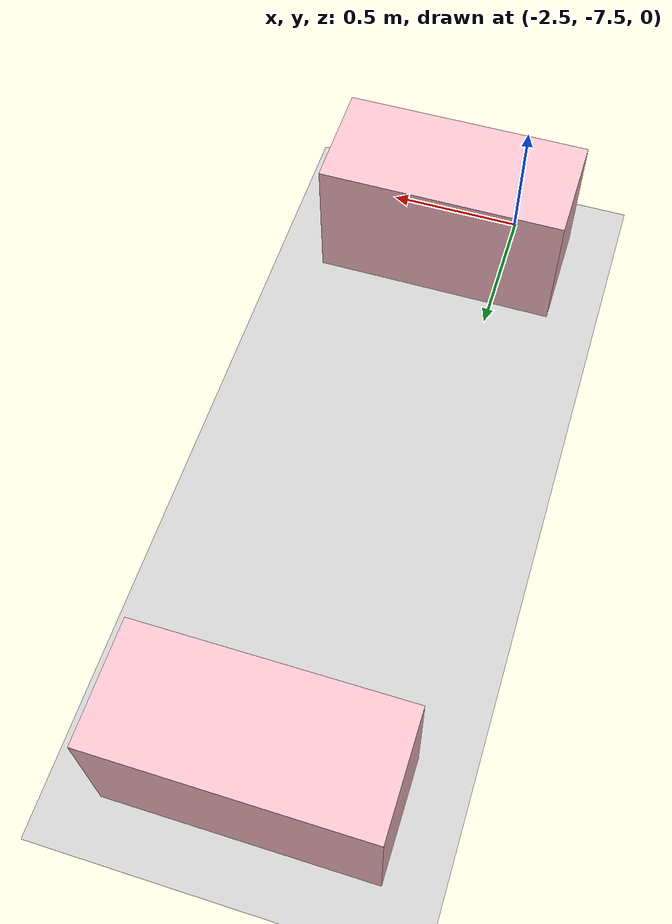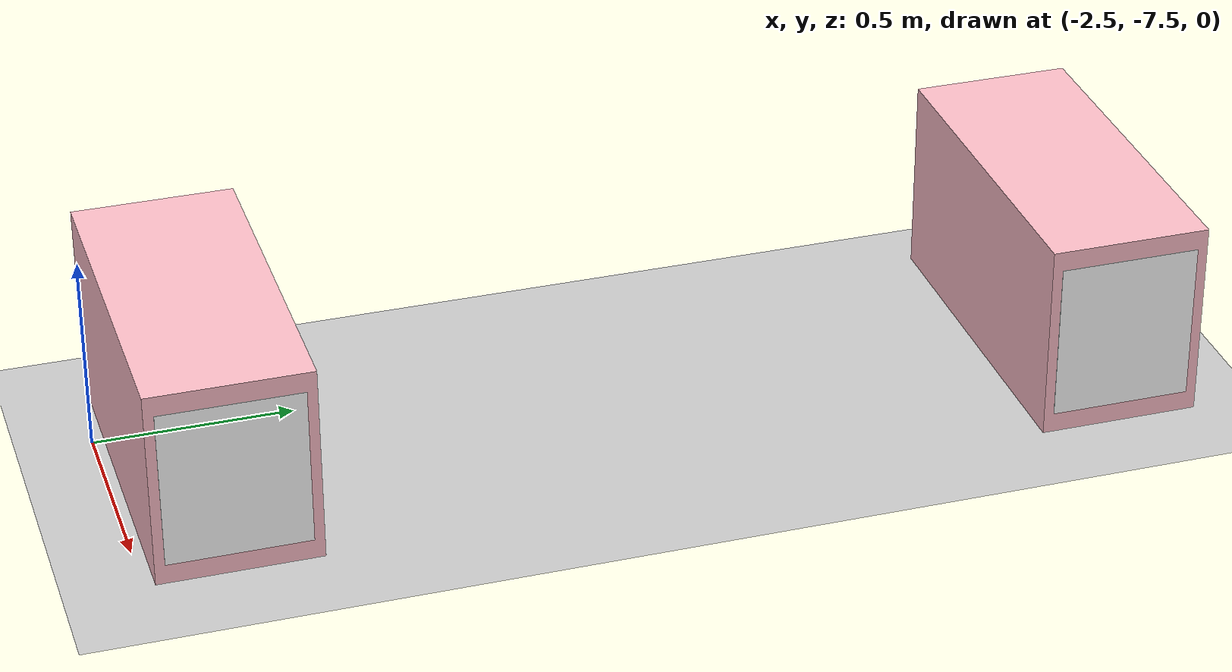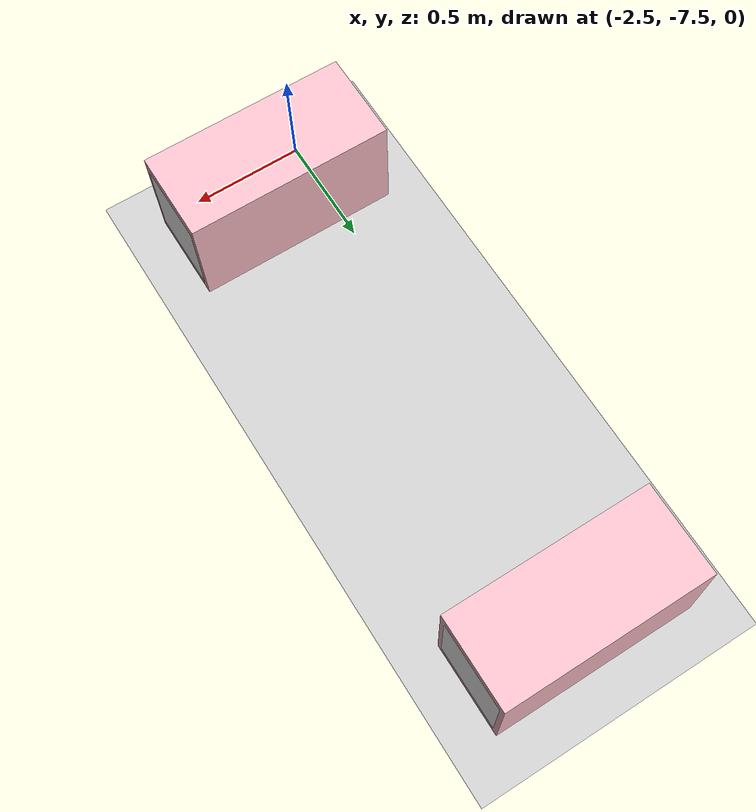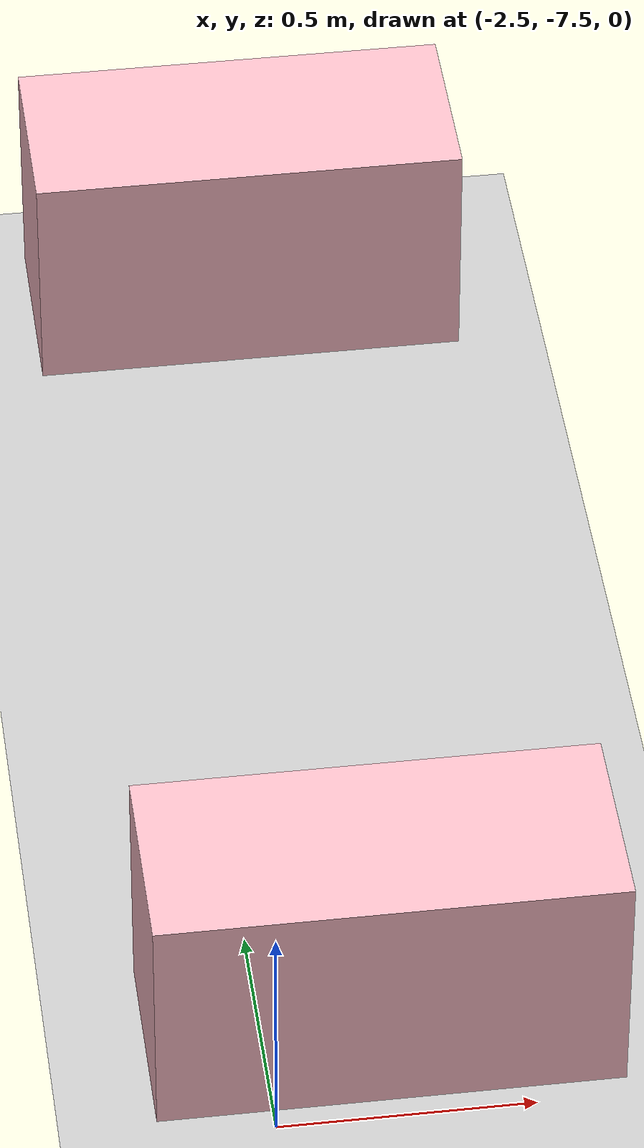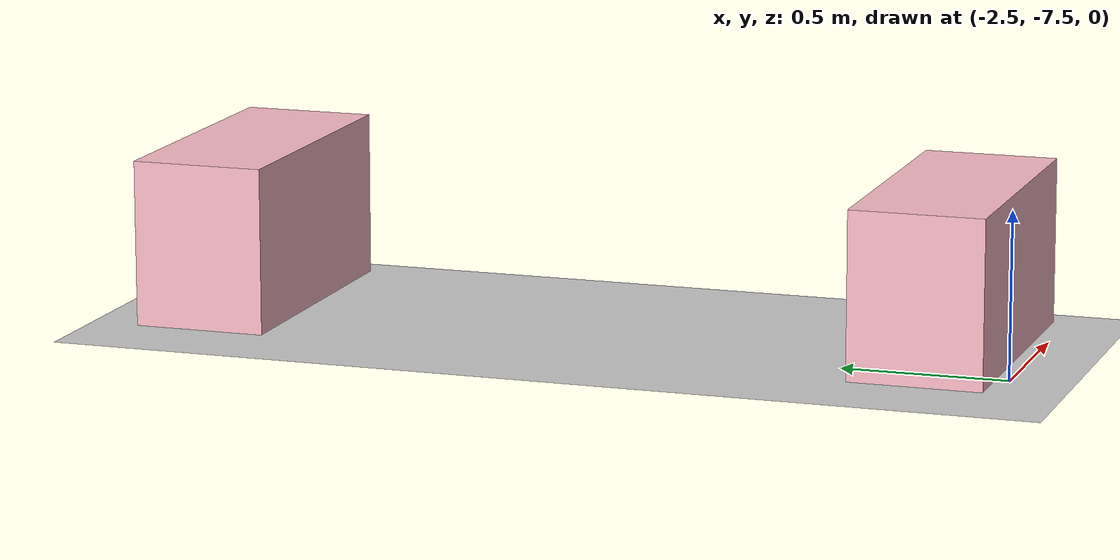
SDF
<sdf version="1.9">
 <world name="pig_pen_16units_world">
  <model name="ground_plane">
   <static>true</static>
   <link name="link">
    <collision name="collision">
     <geometry><plane><normal>0 0 1</normal><size>30 30</size></plane></geometry>
     <surface><friction><ode><mu>1.0</mu><mu2>1.0</mu2></ode></friction></surface>
    </collision>
    <visual name="visual">
     <geometry><plane><normal>0 0 1</normal><size>30 30</size></plane></geometry>
     <material>
      <ambient>0.8 0.8 0.8 1</ambient>
      <diffuse>0.8 0.8 0.8 1</diffuse>
      <specular>0.2 0.2 0.2 1</specular>
     </material>
    </visual>
   </link>
  </model>
  <include><uri>model://farm_pig</uri><name>pig1_a</name><pose>-2.275 -7.275 0.27 0 0 0</pose></include>
  <include><uri>model://farm_pig</uri><name>pig4_b</name><pose>-2.275 -5.085 0.27 0 0 0</pose></include>
 </world>
</sdf>
